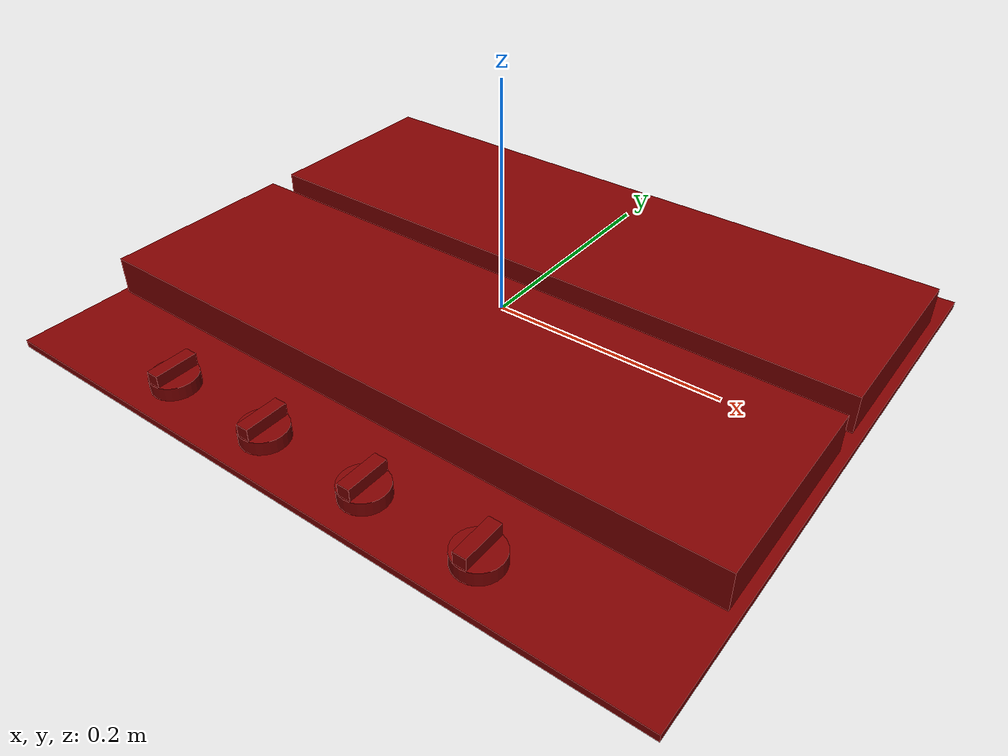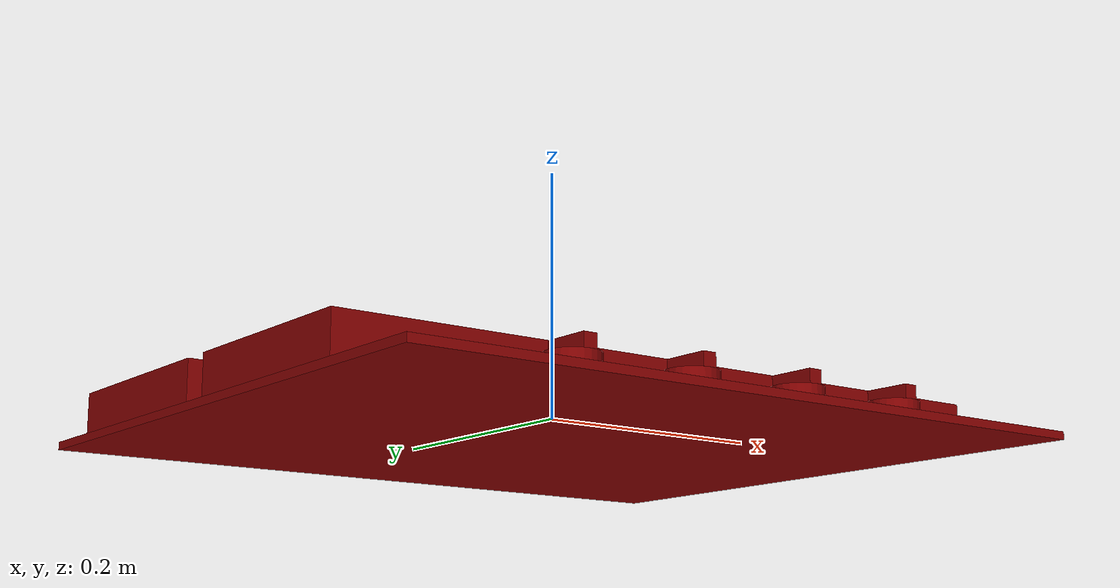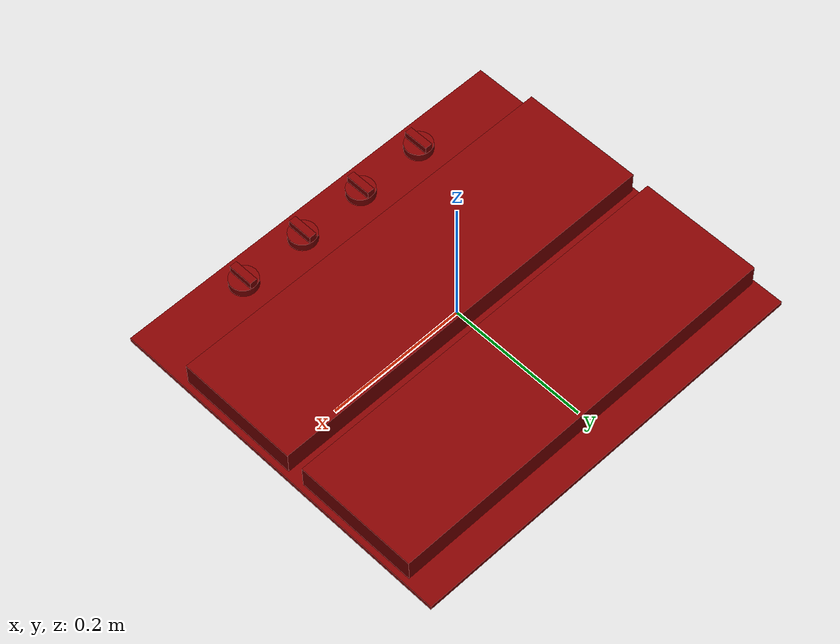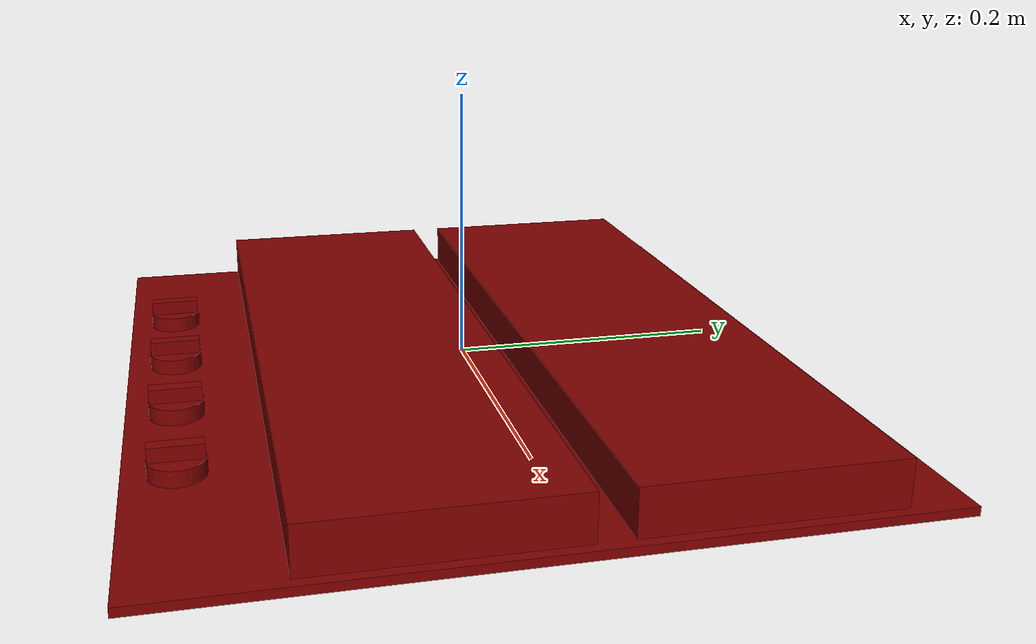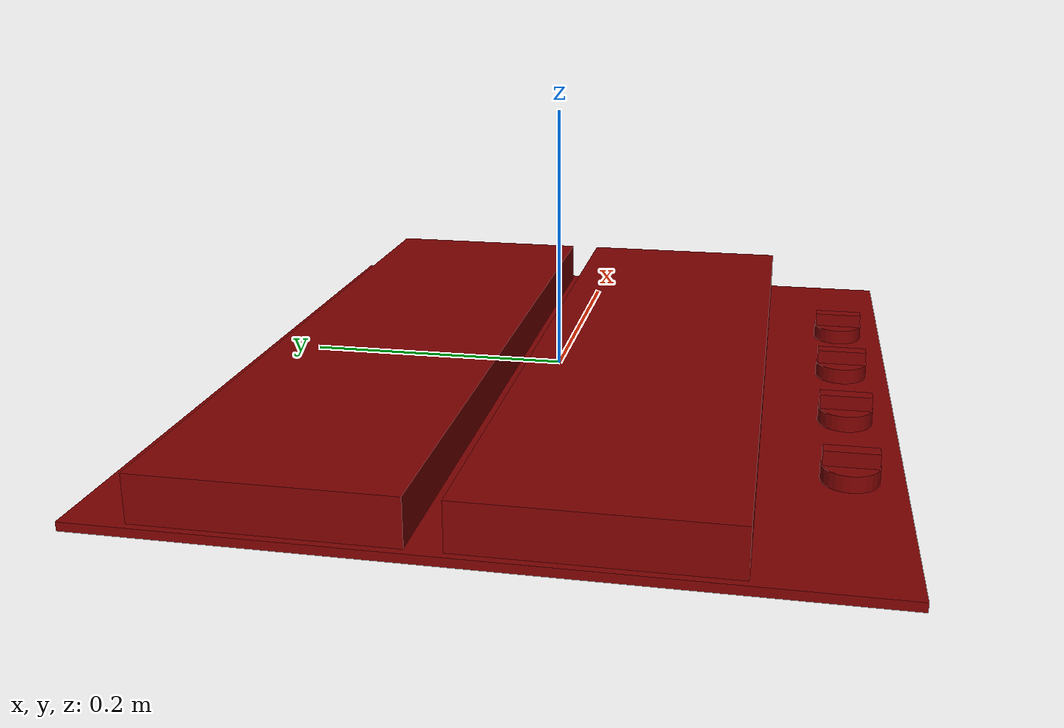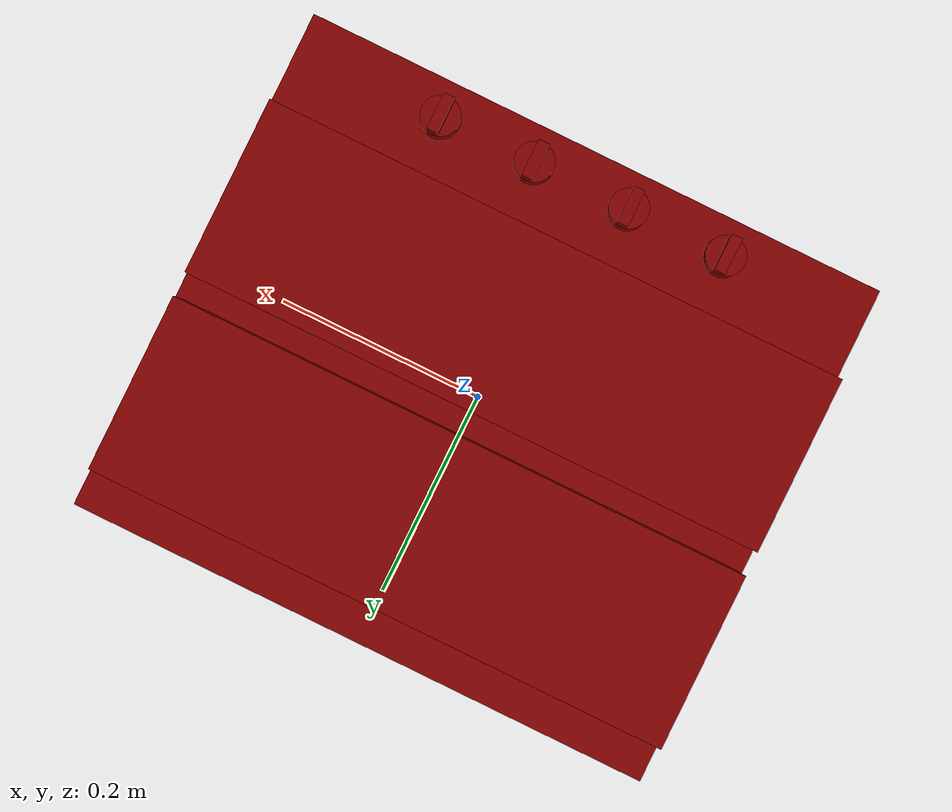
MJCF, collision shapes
<?xml version='1.0' encoding='UTF-8'?>
<mujoco model="model">
  <compiler angle="radian"/>
  <asset>
    <mesh file="visuals/knob_front_left.obj" name="knob_front_left_vis"/>
    <mesh file="visuals/knob_front_right.obj" name="knob_front_right_vis"/>
    <mesh file="visuals/knob_rear_left.obj" name="knob_rear_left_vis"/>
    <mesh file="visuals/knob_rear_right.obj" name="knob_rear_right_vis"/>
    <mesh file="visuals/Body001.obj" name="Body001_vis"/>
    <texture file="visuals/T_BC001.png" name="Body001_material" type="2d"/>
    <material name="Body001_material" rgba="1 1 1 1.0" texture="Body001_material" shininess="5" specular="5"/>
    <texture file="visuals/T_BC001.png" name="knob_front_right_material" type="2d"/>
    <material name="knob_front_right_material" rgba="1 1 1 1.0" texture="knob_front_right_material" shininess="0.4472135901451111" specular="3"/>
    <texture file="visuals/T_BC001.png" name="knob_front_left_material" type="2d"/>
    <material name="knob_front_left_material" rgba="1 1 1 1.0" texture="knob_front_left_material" shininess="0.4472135901451111" specular="3"/>
    <texture file="visuals/T_BC001.png" name="knob_rear_left_material" type="2d"/>
    <material name="knob_rear_left_material" rgba="1 1 1 1.0" texture="knob_rear_left_material" shininess="0.4472135901451111" specular="3"/>
    <texture file="visuals/T_BC001.png" name="knob_rear_right_material" type="2d"/>
    <material name="knob_rear_right_material" rgba="1 1 1 1.0" texture="knob_rear_right_material" shininess="0.4472135901451111" specular="3"/>
  </asset>
  <default>
    <default class="visual">
      <geom conaffinity="0" contype="0" group="1" type="mesh"/>
    </default>
    <default class="collision">
      <geom group="0" rgba="0.5 0 0 0.5"/>
    </default>
    <default class="spawn">
      <geom group="0" rgba="1 1 1 0.5" contype="0" conaffinity="0"/>
      <site group="0" rgba="1 1 1 0.5"/>
    </default>
    <default class="region">
      <geom group="1" conaffinity="0" contype="0" rgba="0 1 0 0"/>
    </default>
  </default>
  <worldbody>
    <body>
      <body name="object">
        <site type="cylinder" rgba="0.3 0.4 1 0.5" size="0.028610823675990105 0.004620049148797989" pos="-0.14575743675231934 -0.0717119425535202 0.009129602462053299" name="burner_on_front_left"/>
        <site type="cylinder" rgba="0.3 0.4 1 0.5" size="0.04983231797814369 0.004620048217475414" pos="-0.1453295350074768 0.1253434270620346 0.009129604324698448" name="burner_on_rear_left"/>
        <site type="cylinder" rgba="0.3 0.4 1 0.5" size="0.03759120777249336 0.0046200500801205635" pos="0.14476057887077332 0.12581759691238403 0.009129604324698448" name="burner_on_rear_right"/>
        <site type="cylinder" rgba="0.3 0.4 1 0.5" size="0.03791310638189316 0.0046200500801205635" pos="0.14487174153327942 -0.07227274775505066 0.009129602462053299" name="burner_on_front_right"/>
        <geom mesh="Body001_vis" type="mesh" solimp="0.998 0.998 0.001" solref="0.001 1" density="100" friction="0.95 0.3 0.1" class="visual" material="Body001_material"/>
        <geom class="collision" type="box" pos="0.00027156196301802993 0.0009184321970678866 -0.017001774162054062" size="0.2963346540927887 0.2565191984176636 0.003129084361717105" quat="1.0 0.0 0.0 0.0"/>
        <geom class="collision" type="box" pos="-0.000959691999014467 0.12680421769618988 0.00203036330640316" size="0.2897818386554718 0.08762822300195694 0.017513927072286606" quat="1.0 0.0 0.0 0.0"/>
        <geom class="collision" type="box" pos="-0.000959691999014467 -0.07246845960617065 0.00203036330640316" size="0.2897818386554718 0.08762822300195694 0.01751391962170601" quat="1.0 0.0 0.0 0.0"/>
        <body name="knob_front_right">
          <joint axis="0.0 0.0 1.0" pos="0.14623035490512848 -0.21961882710456848 -0.001868460327386856" limited="true" name="knob_front_right_joint" range="0.0 3.6651914291880923" type="hinge" damping="0.05" armature="0.001"/>
          <geom mesh="knob_front_right_vis" type="mesh" solimp="0.998 0.998 0.001" solref="0.001 1" density="100" friction="0.95 0.3 0.1" class="visual" material="knob_front_right_material"/>
          <geom class="collision" type="cylinder" pos="0.1460830271244049 -0.21942134201526642 -0.0078119453974068165" size="0.019426897168159485 0.005733807105571032" quat="1.0 0.0 0.0 0.0"/>
          <geom class="collision" type="box" pos="0.14544935524463654 -0.21942134201526642 0.003148301737383008" size="0.005467358510941267 0.018467804417014122 0.005191871430724859" quat="1.0 0.0 0.0 0.0"/>
        </body>
        <body name="knob_front_left">
          <joint axis="0.0 0.0 1.0" pos="-0.14951883256435394 -0.21961882710456848 -0.001868460327386856" limited="true" name="knob_front_left_joint" range="0.0 3.6651914291880923" type="hinge" damping="0.05" armature="0.001"/>
          <geom mesh="knob_front_left_vis" type="mesh" solimp="0.998 0.998 0.001" solref="0.001 1" density="100" friction="0.95 0.3 0.1" class="visual" material="knob_front_left_material"/>
          <geom class="collision" type="cylinder" pos="-0.14953047037124634 -0.21942134201526642 -0.0078119453974068165" size="0.019426897168159485 0.005733807105571032" quat="1.0 0.0 0.0 0.0"/>
          <geom class="collision" type="box" pos="-0.14953047037124634 -0.21942134201526642 0.003148301737383008" size="0.005467357579618692 0.018467804417014122 0.005191870499402285" quat="1.0 0.0 0.0 0.0"/>
        </body>
        <body name="knob_rear_left">
          <joint axis="0.0 0.0 1.0" pos="-0.04911526292562485 -0.21961882710456848 -0.001868460327386856" limited="true" name="knob_rear_left_joint" range="0.0 3.6651914291880923" type="hinge" damping="0.05" armature="0.001"/>
          <geom mesh="knob_rear_left_vis" type="mesh" solimp="0.998 0.998 0.001" solref="0.001 1" density="100" friction="0.95 0.3 0.1" class="visual" material="knob_rear_left_material"/>
          <geom class="collision" type="cylinder" pos="-0.049300502985715866 -0.21942134201526642 -0.0078119453974068165" size="0.019426897168159485 0.005733807105571032" quat="1.0 0.0 0.0 0.0"/>
          <geom class="collision" type="box" pos="-0.04969703406095505 -0.21942134201526642 0.003148301737383008" size="0.00546735804527998 0.018467804417014122 0.005191870965063572" quat="1.0 0.0 0.0 0.0"/>
        </body>
        <body name="knob_rear_right">
          <joint axis="0.0 0.0 1.0" pos="0.049012377858161926 -0.21961882710456848 -0.001868460327386856" limited="true" name="knob_rear_right_joint" range="0.0 3.6651914291880923" type="hinge" damping="0.05" armature="0.001"/>
          <geom mesh="knob_rear_right_vis" type="mesh" solimp="0.998 0.998 0.001" solref="0.001 1" density="100" friction="0.95 0.3 0.1" class="visual" material="knob_rear_right_material"/>
          <geom class="collision" type="cylinder" pos="0.04864764213562012 -0.21942134201526642 -0.0078119453974068165" size="0.019426897168159485 0.005733807105571032" quat="1.0 0.0 0.0 0.0"/>
          <geom class="collision" type="box" pos="0.04817016050219536 -0.21942134201526642 0.003148301737383008" size="0.005467358510941267 0.018467804417014122 0.005191871430724859" quat="1.0 0.0 0.0 0.0"/>
        </body>
        <geom class="region" name="reg_main" type="box" pos="7.450580596923828e-09 0.0 -0.015982169657945633" size="0.29568418860435486 0.2554118037223816 0.004051148425787687"/>
      </body>
    </body>
  </worldbody>
  <actuator>
    <motor name="knob_front_right_joint_actuator" joint="knob_front_right_joint" gear="10"/>
    <motor name="knob_front_left_joint_actuator" joint="knob_front_left_joint" gear="10"/>
    <motor name="knob_rear_left_joint_actuator" joint="knob_rear_left_joint" gear="10"/>
    <motor name="knob_rear_right_joint_actuator" joint="knob_rear_right_joint" gear="10"/>
  </actuator>
</mujoco>
